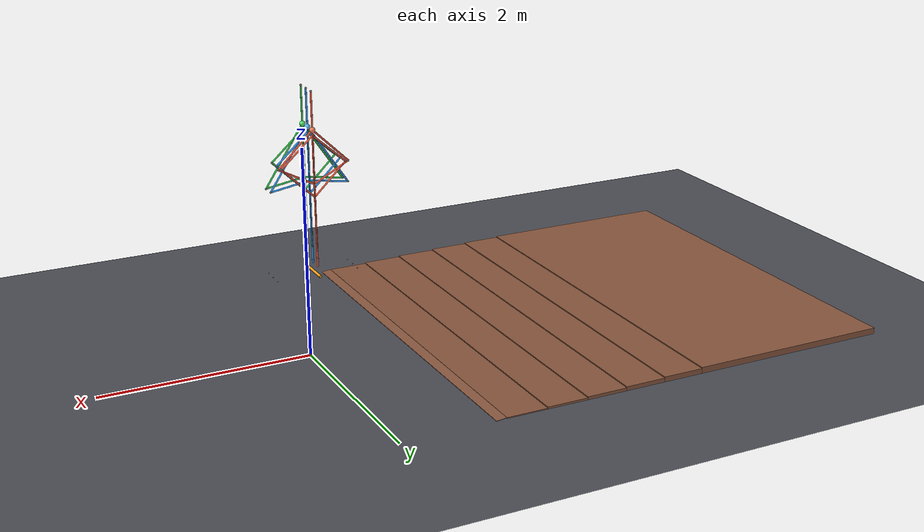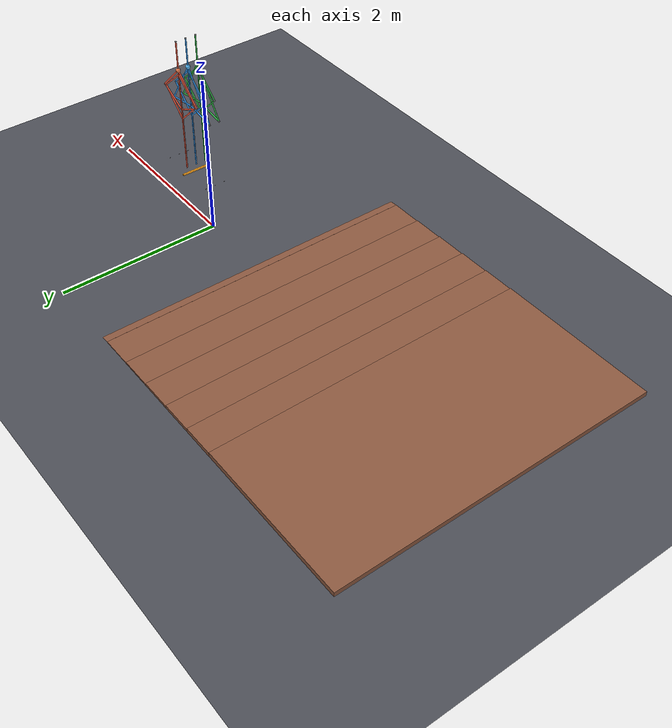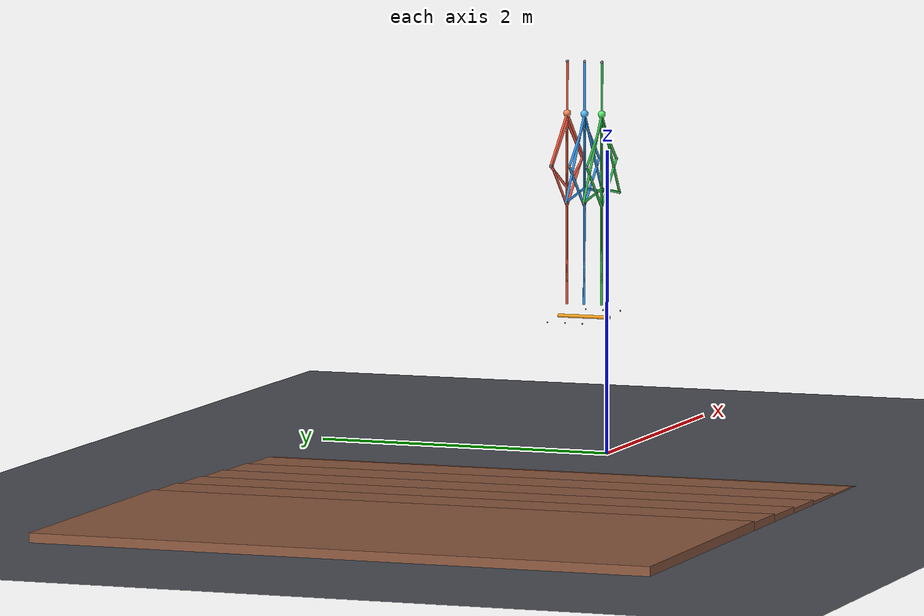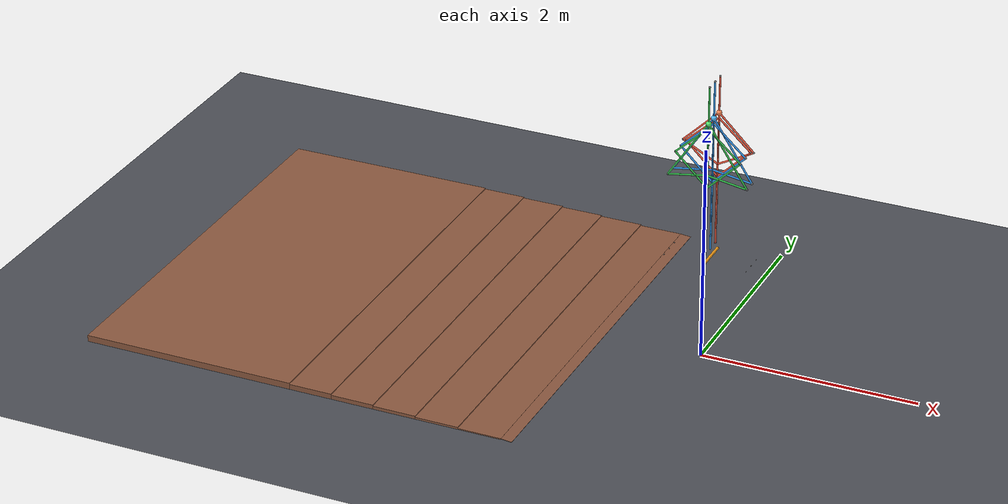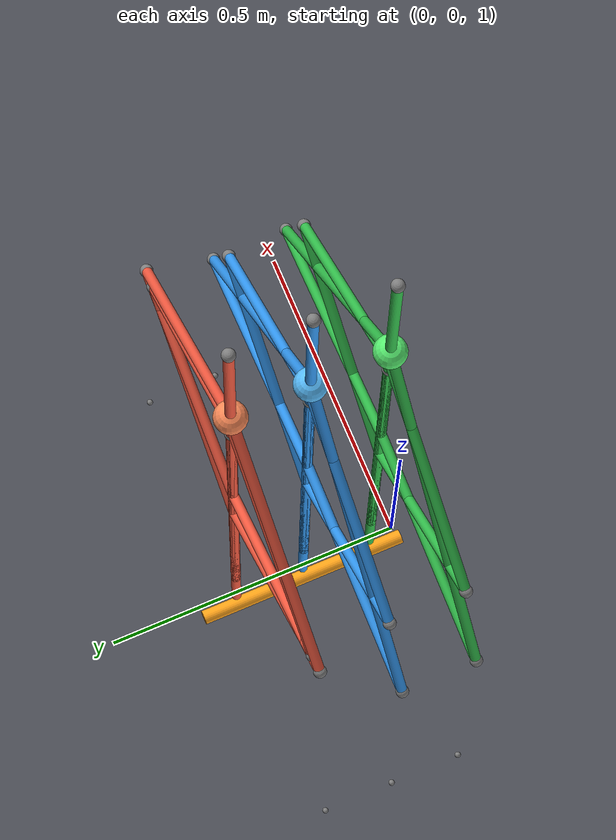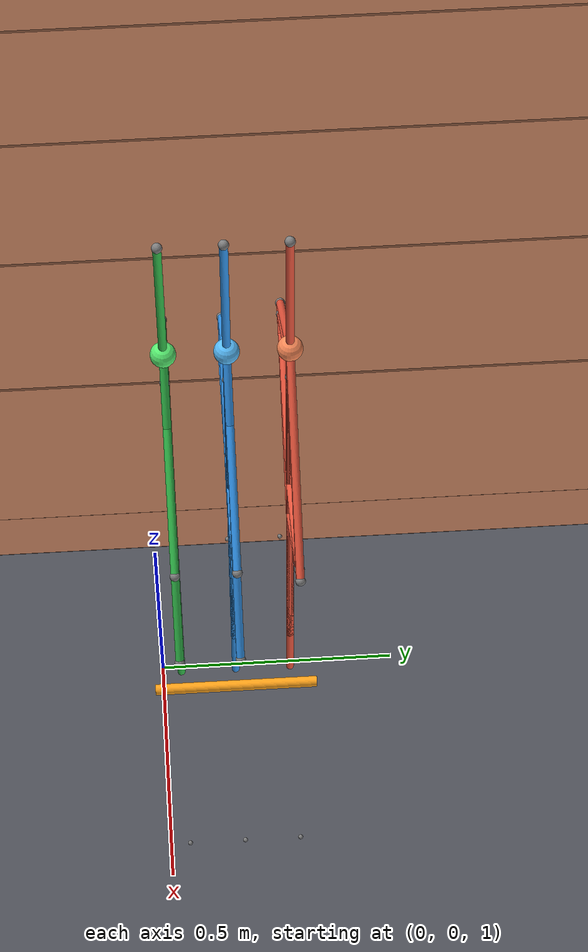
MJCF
<mujoco model="Strandbeest_StairAscending">

  <compiler angle="radian" inertiafromgeom="true" autolimits="true" />

  <option gravity="0 0 -9.81" timestep="0.0005" integrator="implicitfast"
          iterations="800" solver="Newton" tolerance="1e-12"
          noslip_iterations="10" noslip_tolerance="1e-10" />

  <visual>
    <rgba haze="0.15 0.25 0.35 1" />
    <quality shadowsize="4096" />
    <map shadowclip="3" />
  </visual>

  <default>
    <joint damping="0.5" armature="0.005" />
    <geom contype="0" conaffinity="0" friction="0.9 0.05 0.05"
          rgba="0.5 0.5 0.5 1" density="500" />

    <default class="step">
      <geom type="box" contype="1" conaffinity="1" rgba="0.55 0.35 0.25 1"
            friction="1.2 0.05 0.05" density="2500" />
    </default>
  </default>

  <asset>
    <!-- Sky & ground -->
    <texture name="skybox" type="skybox" builtin="gradient"
             rgb1="0.35 0.55 0.75" rgb2="0.05 0.08 0.15"
             width="512" height="3072" />
    <texture name="grid_tex" type="2d" builtin="checker"
             rgb1="0.25 0.26 0.28" rgb2="0.35 0.36 0.40"
             width="512" height="512" />
    <material name="grid_mat" texture="grid_tex"
              texrepeat="40 20" texuniform="true" reflectance="0.1" />

    <!-- Walker materials -->
    <material name="frame"       rgba="0.184 0.282 0.345 1" />
    <material name="crank"       rgba="1.0 0.639 0.098 1" />
    <material name="regular"     rgba="0.20 0.75 0.30 1" />
    <material name="regular_alt" rgba="0.20 0.60 0.95 1" />
    <material name="modified"    rgba="0.95 0.35 0.25 1" />
    <material name="foot_reg"    rgba="0.35 0.95 0.45 1" />
    <material name="foot_reg2"   rgba="0.35 0.75 1.00 1" />
    <material name="foot_mod"    rgba="1.00 0.55 0.35 1" />
  </asset>

  <worldbody>
    <light name="sun" pos="0 0 6" dir="0 0 -1" diffuse="0.8 0.8 0.8" specular="0.1 0.1 0.1" />

    <!-- ──────────── Walker chassis ──────────── -->
    <body name="crossbar" pos="0 0 0.9">
      <joint name="root_slide_x" type="slide" axis="1 0 0" damping="2.0" />
      <geom name="crossbar_geom" type="cylinder" size="0.012 0.18"
            pos="0 0.16 0" euler="1.5708 0 0" material="crank" />

      <!-- ============ PAIR 05 : REGULAR JANSEN (rear) ============ -->
      <site name="base_p05_l_site" pos="-0.38 0.04 0" size="0.005" />
      <body name="crank_axle_p05_l" pos="0 0.04 0.078">
        <joint name="joint_crossbar_crank_p05_l" type="hinge" axis="0 1 0" />
        <body name="bar_m_p05_l" pos="0 0 0">
          <geom name="bar_m_geom_p05_l" type="cylinder" size="0.008 0.075" pos="0 0 0.075" material="regular" />
          <body name="bar_j_p05_l" pos="0 0 0.15">
            <joint name="joint_m_j_p05_l" type="hinge" axis="0 1 0" />
            <geom name="bar_j_geom_p05_l" type="cylinder" size="0.008 0.25" pos="0 0 0.25" material="regular" />
            <body name="bar_k_p05_l" pos="0 0 0">
              <joint name="joint_j_k_p05_l" type="hinge" axis="0 1 0" />
              <geom name="bar_k_geom_p05_l" type="cylinder" size="0.008 0.3095" pos="0 0 0.3095" material="regular" />
              <body name="bar_c_p05_l" pos="0 0 0.619">
                <joint name="joint_k_c_p05_l" type="hinge" axis="0 1 0" />
                <geom name="bar_c_geom_p05_l" type="cylinder" size="0.008 0.1965" pos="0 0 0.1965" material="regular" />
                <site name="bar_c_tip_p05_l" pos="0 0 0.393" size="0.01" />
              </body>
              <body name="bars_g_h_i_p05_l" pos="0 0 0.619">
                <joint name="joint_k_i_p05_l" type="hinge" axis="0 1 0" />
                <geom name="ghi_g_p05_l" type="cylinder" size="0.008 0.245" pos="0 0 0.245" material="regular" />
                <geom name="ghi_h_p05_l" type="cylinder" size="0.008 0.1835" pos="0.1812 0 -0.0291" euler="0 1.73 0" material="regular" />
                <geom name="ghi_i_p05_l" type="cylinder" size="0.008 0.3285" pos="0.1811 0 0.2159" euler="0 2.5576 0" material="regular" />
                <geom name="foot_p05_l" type="sphere" size="0.025" pos="0 0 0.49" contype="1" conaffinity="1" material="foot_reg" />
                <site name="ghi_loopsite_p05_l" pos="0.3624 0 -0.0582" size="0.01" />
              </body>
            </body>
            <body name="bars_b_d_e_p05_l" pos="0 0 0.50">
              <joint name="joint_j_e_p05_l" type="hinge" axis="0 1 0" />
              <geom name="bde_b_p05_l" type="cylinder" size="0.008 0.279" pos="0 0 0.279" material="regular" />
              <geom name="bde_d_p05_l" type="cylinder" size="0.008 0.2005" pos="-0.1488 0 0.4236" euler="0 -2.3056 0" material="regular" />
              <geom name="bde_e_p05_l" type="cylinder" size="0.008 0.2075" pos="-0.1489 0 0.1446" euler="0 -0.8 0" material="regular" />
              <site name="bde_loopsite_p05_l" pos="-0.2978 0 0.2892" size="0.01" />
              <body name="bar_f_p05_l" pos="0 0 0.558">
                <joint name="joint_e_f_p05_l" type="hinge" axis="0 1 0" />
                <geom name="bar_f_geom_p05_l" type="cylinder" size="0.008 0.197" pos="0 0 0.197" material="regular" />
                <site name="bar_f_tip_p05_l" pos="0 0 0.394" size="0.01" />
              </body>
            </body>
          </body>
        </body>
      </body>

      <site name="base_p05_r_site" pos="0.38 0.04 0" size="0.005" />
      <body name="crank_axle_p05_r" pos="0 0.04 0.078">
        <joint name="joint_crossbar_crank_p05_r" type="hinge" axis="0 1 0" />
        <body name="bar_m_p05_r" pos="0 0 0">
          <geom name="bar_m_geom_p05_r" type="cylinder" size="0.008 0.075" pos="0 0 0.075" material="regular" />
          <body name="bar_j_p05_r" pos="0 0 0.15">
            <joint name="joint_m_j_p05_r" type="hinge" axis="0 1 0" />
            <geom name="bar_j_geom_p05_r" type="cylinder" size="0.008 0.25" pos="0 0 0.25" material="regular" />
            <body name="bar_k_p05_r" pos="0 0 0">
              <joint name="joint_j_k_p05_r" type="hinge" axis="0 1 0" />
              <geom name="bar_k_geom_p05_r" type="cylinder" size="0.008 0.3095" pos="0 0 0.3095" material="regular" />
              <body name="bar_c_p05_r" pos="0 0 0.619">
                <joint name="joint_k_c_p05_r" type="hinge" axis="0 1 0" />
                <geom name="bar_c_geom_p05_r" type="cylinder" size="0.008 0.1965" pos="0 0 0.1965" material="regular" />
                <site name="bar_c_tip_p05_r" pos="0 0 0.393" size="0.01" />
              </body>
              <body name="bars_g_h_i_p05_r" pos="0 0 0.619">
                <joint name="joint_k_i_p05_r" type="hinge" axis="0 1 0" />
                <geom name="ghi_g_p05_r" type="cylinder" size="0.008 0.245" pos="0 0 0.245" material="regular" />
                <geom name="ghi_h_p05_r" type="cylinder" size="0.008 0.1835" pos="-0.1812 0 -0.0291" euler="0 -1.73 0" material="regular" />
                <geom name="ghi_i_p05_r" type="cylinder" size="0.008 0.3285" pos="-0.1811 0 0.2159" euler="0 -2.5576 0" material="regular" />
                <geom name="foot_p05_r" type="sphere" size="0.025" pos="0 0 0.49" contype="1" conaffinity="1" material="foot_reg" />
                <site name="ghi_loopsite_p05_r" pos="-0.3624 0 -0.0582" size="0.01" />
              </body>
            </body>
            <body name="bars_b_d_e_p05_r" pos="0 0 0.50">
              <joint name="joint_j_e_p05_r" type="hinge" axis="0 1 0" />
              <geom name="bde_b_p05_r" type="cylinder" size="0.008 0.279" pos="0 0 0.279" material="regular" />
              <geom name="bde_d_p05_r" type="cylinder" size="0.008 0.2005" pos="0.1488 0 0.4236" euler="0 2.3056 0" material="regular" />
              <geom name="bde_e_p05_r" type="cylinder" size="0.008 0.2075" pos="0.1489 0 0.1446" euler="0 0.8 0" material="regular" />
              <site name="bde_loopsite_p05_r" pos="0.2978 0 0.2892" size="0.01" />
              <body name="bar_f_p05_r" pos="0 0 0.558">
                <joint name="joint_e_f_p05_r" type="hinge" axis="0 1 0" />
                <geom name="bar_f_geom_p05_r" type="cylinder" size="0.008 0.197" pos="0 0 0.197" material="regular" />
                <site name="bar_f_tip_p05_r" pos="0 0 0.394" size="0.01" />
              </body>
            </body>
          </body>
        </body>
      </body>

      <!-- ============ PAIR 06 : REGULAR JANSEN (middle) ============ -->
      <site name="base_p06_l_site" pos="-0.38 0.16 0" size="0.005" />
      <body name="crank_axle_p06_l" pos="0 0.16 0.078">
        <joint name="joint_crossbar_crank_p06_l" type="hinge" axis="0 1 0" />
        <body name="bar_m_p06_l" pos="0 0 0">
          <geom name="bar_m_geom_p06_l" type="cylinder" size="0.008 0.075" pos="0 0 0.075" material="regular_alt" />
          <body name="bar_j_p06_l" pos="0 0 0.15">
            <joint name="joint_m_j_p06_l" type="hinge" axis="0 1 0" />
            <geom name="bar_j_geom_p06_l" type="cylinder" size="0.008 0.25" pos="0 0 0.25" material="regular_alt" />
            <body name="bar_k_p06_l" pos="0 0 0">
              <joint name="joint_j_k_p06_l" type="hinge" axis="0 1 0" />
              <geom name="bar_k_geom_p06_l" type="cylinder" size="0.008 0.3095" pos="0 0 0.3095" material="regular_alt" />
              <body name="bar_c_p06_l" pos="0 0 0.619">
                <joint name="joint_k_c_p06_l" type="hinge" axis="0 1 0" />
                <geom name="bar_c_geom_p06_l" type="cylinder" size="0.008 0.1965" pos="0 0 0.1965" material="regular_alt" />
                <site name="bar_c_tip_p06_l" pos="0 0 0.393" size="0.01" />
              </body>
              <body name="bars_g_h_i_p06_l" pos="0 0 0.619">
                <joint name="joint_k_i_p06_l" type="hinge" axis="0 1 0" />
                <geom name="ghi_g_p06_l" type="cylinder" size="0.008 0.245" pos="0 0 0.245" material="regular_alt" />
                <geom name="ghi_h_p06_l" type="cylinder" size="0.008 0.1835" pos="0.1812 0 -0.0291" euler="0 1.73 0" material="regular_alt" />
                <geom name="ghi_i_p06_l" type="cylinder" size="0.008 0.3285" pos="0.1811 0 0.2159" euler="0 2.5576 0" material="regular_alt" />
                <geom name="foot_p06_l" type="sphere" size="0.025" pos="0 0 0.49" contype="1" conaffinity="1" material="foot_reg2" />
                <site name="ghi_loopsite_p06_l" pos="0.3624 0 -0.0582" size="0.01" />
              </body>
            </body>
            <body name="bars_b_d_e_p06_l" pos="0 0 0.50">
              <joint name="joint_j_e_p06_l" type="hinge" axis="0 1 0" />
              <geom name="bde_b_p06_l" type="cylinder" size="0.008 0.279" pos="0 0 0.279" material="regular_alt" />
              <geom name="bde_d_p06_l" type="cylinder" size="0.008 0.2005" pos="-0.1488 0 0.4236" euler="0 -2.3056 0" material="regular_alt" />
              <geom name="bde_e_p06_l" type="cylinder" size="0.008 0.2075" pos="-0.1489 0 0.1446" euler="0 -0.8 0" material="regular_alt" />
              <site name="bde_loopsite_p06_l" pos="-0.2978 0 0.2892" size="0.01" />
              <body name="bar_f_p06_l" pos="0 0 0.558">
                <joint name="joint_e_f_p06_l" type="hinge" axis="0 1 0" />
                <geom name="bar_f_geom_p06_l" type="cylinder" size="0.008 0.197" pos="0 0 0.197" material="regular_alt" />
                <site name="bar_f_tip_p06_l" pos="0 0 0.394" size="0.01" />
              </body>
            </body>
          </body>
        </body>
      </body>

      <site name="base_p06_r_site" pos="0.38 0.16 0" size="0.005" />
      <body name="crank_axle_p06_r" pos="0 0.16 0.078">
        <joint name="joint_crossbar_crank_p06_r" type="hinge" axis="0 1 0" />
        <body name="bar_m_p06_r" pos="0 0 0">
          <geom name="bar_m_geom_p06_r" type="cylinder" size="0.008 0.075" pos="0 0 0.075" material="regular_alt" />
          <body name="bar_j_p06_r" pos="0 0 0.15">
            <joint name="joint_m_j_p06_r" type="hinge" axis="0 1 0" />
            <geom name="bar_j_geom_p06_r" type="cylinder" size="0.008 0.25" pos="0 0 0.25" material="regular_alt" />
            <body name="bar_k_p06_r" pos="0 0 0">
              <joint name="joint_j_k_p06_r" type="hinge" axis="0 1 0" />
              <geom name="bar_k_geom_p06_r" type="cylinder" size="0.008 0.3095" pos="0 0 0.3095" material="regular_alt" />
              <body name="bar_c_p06_r" pos="0 0 0.619">
                <joint name="joint_k_c_p06_r" type="hinge" axis="0 1 0" />
                <geom name="bar_c_geom_p06_r" type="cylinder" size="0.008 0.1965" pos="0 0 0.1965" material="regular_alt" />
                <site name="bar_c_tip_p06_r" pos="0 0 0.393" size="0.01" />
              </body>
              <body name="bars_g_h_i_p06_r" pos="0 0 0.619">
                <joint name="joint_k_i_p06_r" type="hinge" axis="0 1 0" />
                <geom name="ghi_g_p06_r" type="cylinder" size="0.008 0.245" pos="0 0 0.245" material="regular_alt" />
                <geom name="ghi_h_p06_r" type="cylinder" size="0.008 0.1835" pos="-0.1812 0 -0.0291" euler="0 -1.73 0" material="regular_alt" />
                <geom name="ghi_i_p06_r" type="cylinder" size="0.008 0.3285" pos="-0.1811 0 0.2159" euler="0 -2.5576 0" material="regular_alt" />
                <geom name="foot_p06_r" type="sphere" size="0.025" pos="0 0 0.49" contype="1" conaffinity="1" material="foot_reg2" />
                <site name="ghi_loopsite_p06_r" pos="-0.3624 0 -0.0582" size="0.01" />
              </body>
            </body>
            <body name="bars_b_d_e_p06_r" pos="0 0 0.50">
              <joint name="joint_j_e_p06_r" type="hinge" axis="0 1 0" />
              <geom name="bde_b_p06_r" type="cylinder" size="0.008 0.279" pos="0 0 0.279" material="regular_alt" />
              <geom name="bde_d_p06_r" type="cylinder" size="0.008 0.2005" pos="0.1488 0 0.4236" euler="0 2.3056 0" material="regular_alt" />
              <geom name="bde_e_p06_r" type="cylinder" size="0.008 0.2075" pos="0.1489 0 0.1446" euler="0 0.8 0" material="regular_alt" />
              <site name="bde_loopsite_p06_r" pos="0.2978 0 0.2892" size="0.01" />
              <body name="bar_f_p06_r" pos="0 0 0.558">
                <joint name="joint_e_f_p06_r" type="hinge" axis="0 1 0" />
                <geom name="bar_f_geom_p06_r" type="cylinder" size="0.008 0.197" pos="0 0 0.197" material="regular_alt" />
                <site name="bar_f_tip_p06_r" pos="0 0 0.394" size="0.01" />
              </body>
            </body>
          </body>
        </body>
      </body>

      <site name="base_p07_l_site" pos="-0.38 0.28 0" size="0.005" />
      <body name="crank_axle_p07_l" pos="0 0.28 0.078">
        <joint name="joint_crossbar_crank_p07_l" type="hinge" axis="0 1 0" />
        <body name="bar_m_p07_l" pos="0 0 0">
          <geom name="bar_m_geom_p07_l" type="cylinder" size="0.008 0.075" pos="0 0 0.075" material="modified" />
          <body name="bar_j_p07_l" pos="0 0 0.15">
            <joint name="joint_m_j_p07_l" type="hinge" axis="0 1 0" />
            <geom name="bar_j_geom_p07_l" type="cylinder" size="0.008 0.25" pos="0 0 0.25" material="modified" />
            <body name="bar_k_p07_l" pos="0 0 0">
              <joint name="joint_j_k_p07_l" type="hinge" axis="0 1 0" />
              <geom name="bar_k_geom_p07_l" type="cylinder" size="0.008 0.3095" pos="0 0 0.3095" material="modified" />
              <body name="bar_c_p07_l" pos="0 0 0.619">
                <joint name="joint_k_c_p07_l" type="hinge" axis="0 1 0" />
                <geom name="bar_c_geom_p07_l" type="cylinder" size="0.008 0.1965" pos="0 0 0.1965" material="modified" />
                <site name="bar_c_tip_p07_l" pos="0 0 0.393" size="0.01" />
              </body>
              <!-- MODIFIED triangle: vertex positions A=(0,0,0), B_foot=(0,0,0.49), C=(0.324,0,0.172) -->
              <body name="bars_g_h_i_p07_l" pos="0 0 0.619">
                <joint name="joint_k_i_p07_l" type="hinge" axis="0 1 0" />
                <!-- g: A→B_foot, unchanged (length 0.49) -->
                <geom name="ghi_g_p07_l" type="cylinder" size="0.008 0.245" pos="0 0 0.245" material="modified" />
                <!-- h: A→C, length 0.367, direction (0.883,0,0.469), angle = atan2(0.883,0.469) ≈ 1.083 rad -->
                <geom name="ghi_h_p07_l" type="cylinder" size="0.008 0.1835" pos="0.162 0 0.086" euler="0 1.083 0" material="modified" />
                <!-- i_new: C→B_foot, length 0.45, direction (-0.720,0,0.706), angle ≈ -0.795 rad (pointing back-down)
                     center at midpoint of (0.324,0,0.172) and (0,0,0.49) = (0.162, 0, 0.331) -->
                <geom name="ghi_i_p07_l" type="cylinder" size="0.008 0.225" pos="0.162 0 0.331" euler="0 -0.795 0" material="modified" />
                <geom name="foot_p07_l" type="sphere" size="0.025" pos="0 0 0.49" contype="1" conaffinity="1" material="foot_mod" />
                <!-- loop site at new C position -->
                <site name="ghi_loopsite_p07_l" pos="0.324 0 0.172" size="0.01" />
              </body>
            </body>
            <body name="bars_b_d_e_p07_l" pos="0 0 0.50">
              <joint name="joint_j_e_p07_l" type="hinge" axis="0 1 0" />
              <geom name="bde_b_p07_l" type="cylinder" size="0.008 0.279" pos="0 0 0.279" material="modified" />
              <geom name="bde_d_p07_l" type="cylinder" size="0.008 0.2005" pos="-0.1488 0 0.4236" euler="0 -2.3056 0" material="modified" />
              <geom name="bde_e_p07_l" type="cylinder" size="0.008 0.2075" pos="-0.1489 0 0.1446" euler="0 -0.8 0" material="modified" />
              <site name="bde_loopsite_p07_l" pos="-0.2978 0 0.2892" size="0.01" />
              <body name="bar_f_p07_l" pos="0 0 0.558">
                <joint name="joint_e_f_p07_l" type="hinge" axis="0 1 0" />
                <geom name="bar_f_geom_p07_l" type="cylinder" size="0.008 0.197" pos="0 0 0.197" material="modified" />
                <site name="bar_f_tip_p07_l" pos="0 0 0.394" size="0.01" />
              </body>
            </body>
          </body>
        </body>
      </body>

      <site name="base_p07_r_site" pos="0.38 0.28 0" size="0.005" />
      <body name="crank_axle_p07_r" pos="0 0.28 0.078">
        <joint name="joint_crossbar_crank_p07_r" type="hinge" axis="0 1 0" />
        <body name="bar_m_p07_r" pos="0 0 0">
          <geom name="bar_m_geom_p07_r" type="cylinder" size="0.008 0.075" pos="0 0 0.075" material="modified" />
          <body name="bar_j_p07_r" pos="0 0 0.15">
            <joint name="joint_m_j_p07_r" type="hinge" axis="0 1 0" />
            <geom name="bar_j_geom_p07_r" type="cylinder" size="0.008 0.25" pos="0 0 0.25" material="modified" />
            <body name="bar_k_p07_r" pos="0 0 0">
              <joint name="joint_j_k_p07_r" type="hinge" axis="0 1 0" />
              <geom name="bar_k_geom_p07_r" type="cylinder" size="0.008 0.3095" pos="0 0 0.3095" material="modified" />
              <body name="bar_c_p07_r" pos="0 0 0.619">
                <joint name="joint_k_c_p07_r" type="hinge" axis="0 1 0" />
                <geom name="bar_c_geom_p07_r" type="cylinder" size="0.008 0.1965" pos="0 0 0.1965" material="modified" />
                <site name="bar_c_tip_p07_r" pos="0 0 0.393" size="0.01" />
              </body>
              <body name="bars_g_h_i_p07_r" pos="0 0 0.619">
                <joint name="joint_k_i_p07_r" type="hinge" axis="0 1 0" />
                <geom name="ghi_g_p07_r" type="cylinder" size="0.008 0.245" pos="0 0 0.245" material="modified" />
                <geom name="ghi_h_p07_r" type="cylinder" size="0.008 0.1835" pos="-0.162 0 0.086" euler="0 -1.083 0" material="modified" />
                <geom name="ghi_i_p07_r" type="cylinder" size="0.008 0.225" pos="-0.162 0 0.331" euler="0 0.795 0" material="modified" />
                <geom name="foot_p07_r" type="sphere" size="0.025" pos="0 0 0.49" contype="1" conaffinity="1" material="foot_mod" />
                <site name="ghi_loopsite_p07_r" pos="-0.324 0 0.172" size="0.01" />
              </body>
            </body>
            <body name="bars_b_d_e_p07_r" pos="0 0 0.50">
              <joint name="joint_j_e_p07_r" type="hinge" axis="0 1 0" />
              <geom name="bde_b_p07_r" type="cylinder" size="0.008 0.279" pos="0 0 0.279" material="modified" />
              <geom name="bde_d_p07_r" type="cylinder" size="0.008 0.2005" pos="0.1488 0 0.4236" euler="0 2.3056 0" material="modified" />
              <geom name="bde_e_p07_r" type="cylinder" size="0.008 0.2075" pos="0.1489 0 0.1446" euler="0 0.8 0" material="modified" />
              <site name="bde_loopsite_p07_r" pos="0.2978 0 0.2892" size="0.01" />
              <body name="bar_f_p07_r" pos="0 0 0.558">
                <joint name="joint_e_f_p07_r" type="hinge" axis="0 1 0" />
                <geom name="bar_f_geom_p07_r" type="cylinder" size="0.008 0.197" pos="0 0 0.197" material="modified" />
                <site name="bar_f_tip_p07_r" pos="0 0 0.394" size="0.01" />
              </body>
            </body>
          </body>
        </body>
      </body>

    </body>

    <!-- ──────────── Ground & staircase ──────────── -->
    <geom name="ground" type="plane" size="25 10 0.1" pos="0 0 0"
          material="grid_mat" contype="1" conaffinity="1" />

    <body name="staircase" pos="-1.0 0 0">
      <geom class="step" type="box" size="0.05 2.0 0.002"
            pos="0.05 0 0.003" euler="0 0.0997 0" />
      <!-- Ascending steps, 1 cm rise each, tread 0.40 m.
           Each step's top z aligns with the next step's base.         -->
      <geom class="step" name="step1" size="0.20 2.0 0.005" pos="-0.20 0 0.005" />
      <geom class="step" name="step2" size="0.20 2.0 0.010" pos="-0.60 0 0.010" />
      <geom class="step" name="step3" size="0.20 2.0 0.015" pos="-1.00 0 0.015" />
      <geom class="step" name="step4" size="0.20 2.0 0.020" pos="-1.40 0 0.020" />
      <geom class="step" name="step5" size="0.20 2.0 0.025" pos="-1.80 0 0.025" />
      <!-- Top platform: long flat at z = 0.06 m                        -->
      <geom class="step" name="top_platform" size="1.00 2.0 0.030"
            pos="-3.00 0 0.030" />
    </body>

  </worldbody>

  <actuator>
    <velocity name="crank_motor_master" joint="joint_crossbar_crank_p05_l"
              gear="1" kv="800" ctrllimited="true" ctrlrange="-15 15" />
  </actuator>

  <equality>
    <!-- ============ Closed-chain Jansen loops (3 per leg) ============ -->
    <!-- Pair 05 -->
    <connect name="loop_f_g_p05_l" site1="bar_f_tip_p05_l" site2="ghi_loopsite_p05_l" solimp="0.98 0.999 0.001 0.5 2" solref="0.005 1" />
    <connect name="loop_b_c_p05_l" site1="bde_loopsite_p05_l" site2="bar_c_tip_p05_l" solimp="0.98 0.999 0.001 0.5 2" solref="0.005 1" />
    <connect name="loop_a_c_p05_l" site1="base_p05_l_site"   site2="bar_c_tip_p05_l" solimp="0.98 0.999 0.001 0.5 2" solref="0.005 1" />
    <connect name="loop_f_g_p05_r" site1="bar_f_tip_p05_r" site2="ghi_loopsite_p05_r" solimp="0.98 0.999 0.001 0.5 2" solref="0.005 1" />
    <connect name="loop_b_c_p05_r" site1="bde_loopsite_p05_r" site2="bar_c_tip_p05_r" solimp="0.98 0.999 0.001 0.5 2" solref="0.005 1" />
    <connect name="loop_a_c_p05_r" site1="base_p05_r_site"   site2="bar_c_tip_p05_r" solimp="0.98 0.999 0.001 0.5 2" solref="0.005 1" />
    <!-- Pair 06 -->
    <connect name="loop_f_g_p06_l" site1="bar_f_tip_p06_l" site2="ghi_loopsite_p06_l" solimp="0.98 0.999 0.001 0.5 2" solref="0.005 1" />
    <connect name="loop_b_c_p06_l" site1="bde_loopsite_p06_l" site2="bar_c_tip_p06_l" solimp="0.98 0.999 0.001 0.5 2" solref="0.005 1" />
    <connect name="loop_a_c_p06_l" site1="base_p06_l_site"   site2="bar_c_tip_p06_l" solimp="0.98 0.999 0.001 0.5 2" solref="0.005 1" />
    <connect name="loop_f_g_p06_r" site1="bar_f_tip_p06_r" site2="ghi_loopsite_p06_r" solimp="0.98 0.999 0.001 0.5 2" solref="0.005 1" />
    <connect name="loop_b_c_p06_r" site1="bde_loopsite_p06_r" site2="bar_c_tip_p06_r" solimp="0.98 0.999 0.001 0.5 2" solref="0.005 1" />
    <connect name="loop_a_c_p06_r" site1="base_p06_r_site"   site2="bar_c_tip_p06_r" solimp="0.98 0.999 0.001 0.5 2" solref="0.005 1" />
    <!-- Pair 07 (modified) -->
    <connect name="loop_f_g_p07_l" site1="bar_f_tip_p07_l" site2="ghi_loopsite_p07_l" solimp="0.98 0.999 0.001 0.5 2" solref="0.005 1" />
    <connect name="loop_b_c_p07_l" site1="bde_loopsite_p07_l" site2="bar_c_tip_p07_l" solimp="0.98 0.999 0.001 0.5 2" solref="0.005 1" />
    <connect name="loop_a_c_p07_l" site1="base_p07_l_site"   site2="bar_c_tip_p07_l" solimp="0.98 0.999 0.001 0.5 2" solref="0.005 1" />
    <connect name="loop_f_g_p07_r" site1="bar_f_tip_p07_r" site2="ghi_loopsite_p07_r" solimp="0.98 0.999 0.001 0.5 2" solref="0.005 1" />
    <connect name="loop_b_c_p07_r" site1="bde_loopsite_p07_r" site2="bar_c_tip_p07_r" solimp="0.98 0.999 0.001 0.5 2" solref="0.005 1" />
    <connect name="loop_a_c_p07_r" site1="base_p07_r_site"   site2="bar_c_tip_p07_r" solimp="0.98 0.999 0.001 0.5 2" solref="0.005 1" />

    <joint name="phase_p05_r" joint1="joint_crossbar_crank_p05_r" joint2="joint_crossbar_crank_p05_l" polycoef="-3.141592654 1 0 0 0" />
    <joint name="phase_p06_l" joint1="joint_crossbar_crank_p06_l" joint2="joint_crossbar_crank_p05_l" polycoef=" 1.047197551 1 0 0 0" />
    <joint name="phase_p06_r" joint1="joint_crossbar_crank_p06_r" joint2="joint_crossbar_crank_p05_l" polycoef="-2.094395102 1 0 0 0" />
    <joint name="phase_p07_l" joint1="joint_crossbar_crank_p07_l" joint2="joint_crossbar_crank_p05_l" polycoef=" 2.094395102 1 0 0 0" />
    <joint name="phase_p07_r" joint1="joint_crossbar_crank_p07_r" joint2="joint_crossbar_crank_p05_l" polycoef="-1.047197551 1 0 0 0" />
  </equality>

  <keyframe>
    <key name="init" qpos="
0.000000000
3.141592654 -3.582539594 -1.602578219 2.494024554 -0.774610552 -1.487635166 -0.849320061
0.000000000 13.773446140 1.588380296 -2.348113563 0.620536940 1.346324430 1.127332039
4.188790205 -11.079141647 -1.321917819 2.923861724 -1.534656301 -1.819191839 0.114513913
1.047197551 8.367236356 1.506217000 -2.120541209 0.414523199 1.111969167 1.535104926
5.235987756 -6.377393781 -1.500456280 2.760584519 -1.165338032 -1.715382017 -0.269026654
2.094395102 5.824102602 1.532334275 -2.477974555 0.765444037 1.372452068 0.932794118
" />
  </keyframe>

</mujoco>
